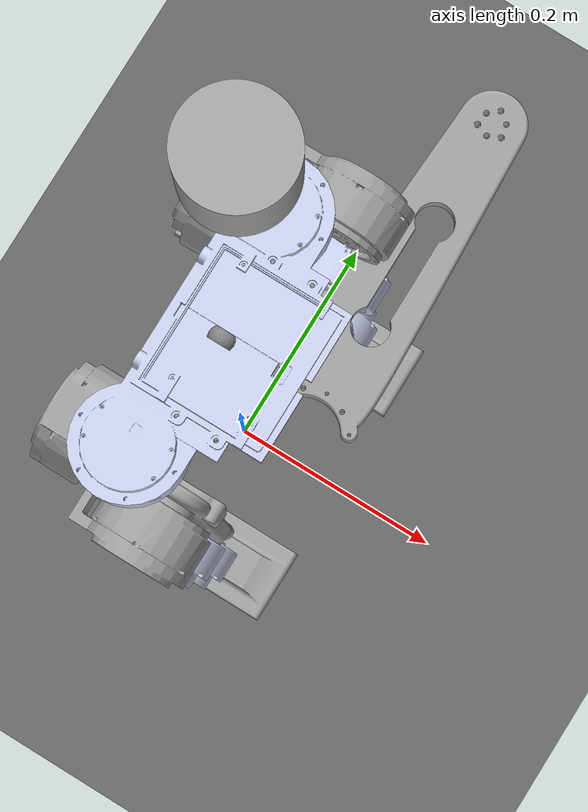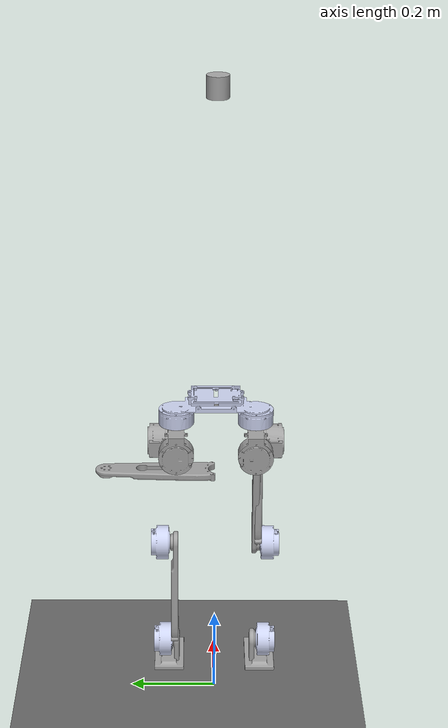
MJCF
<mujoco model="onshape">
  <option iterations="20" timestep="0.001" solver="CG" gravity="0 0 -9.81" />

  <compiler angle="radian" meshdir="../meshes" eulerseq="zyx" autolimits="true" />

  <default>
    <joint limited="true" damping="0.1" armature="0.01" frictionloss="0.01" />
    <geom condim="4" contype="1" conaffinity="15" friction="0.9 0.2 0.2" solref="0.001 2" />
    <motor ctrllimited="true" />
    <equality solref="0.001 2" />
    <default class="visualgeom">
      <geom material="visualgeom" condim="1" contype="0" conaffinity="0" />
    </default>
  </default>

  <asset>
    <mesh name="torso" file="torso.stl" />
    <mesh name="left_hip_yaw_assembled_link" file="left_hip_yaw_assembled_link.stl" />
    <mesh name="left_hip_roll_assembled_link" file="left_hip_roll_assembled_link.stl" />
    <mesh name="left_thigh_link" file="left_thigh_link.stl" />
    <mesh name="left_knee_motor" file="left_knee_motor.stl" />
    <mesh name="left_shin_motor_down_link" file="left_shin_motor_down_link.stl" />
    <mesh name="left_ankle_motor" file="left_ankle_motor.stl" />
    <mesh name="left_foot_10_dof_link" file="left_foot_10_dof_link.stl" />
    <mesh name="right_hip_yaw_assembled_link" file="right_hip_yaw_assembled_link.stl" />
    <mesh name="right_hip_roll_assembled_link" file="right_hip_roll_assembled_link.stl" />
    <mesh name="right_thigh_link" file="right_thigh_link.stl" />
    <mesh name="right_knee_motor" file="right_knee_motor.stl" />
    <mesh name="right_shin_motor_down_link" file="right_shin_motor_down_link.stl" />
    <mesh name="right_ankle_motor" file="right_ankle_motor.stl" />
    <mesh name="right_foot_10_dof_link" file="right_foot_10_dof_link.stl" />
    <mesh name="additional_weight" file="additional_weight.stl" />
    <texture name="texplane" type="2d" builtin="checker" rgb1=".0 .0 .0" rgb2=".8 .8 .8" width="100" height="100" />
    <material name="matplane" reflectance="0." texture="texplane" texrepeat="1 1" texuniform="true" />
    <material name="visualgeom" rgba="0.5 0.9 0.2 1" />
  </asset>

  <worldbody>
    <light directional="true" diffuse="0.4 0.4 0.4" specular="0.1 0.1 0.1" pos="0 0 5.0" dir="0 0 -1" castshadow="false" />
    <light directional="true" diffuse="0.6 0.6 0.6" specular="0.2 0.2 0.2" pos="0 0 4" dir="0 0 -1" />
    <geom name="ground" type="plane" pos="0 0 0" size="100 100 0.001" quat="1 0 0 0" material="matplane" condim="3" conaffinity="15" />
    <camera name="fixed" pos="0 -3.0 1.2492035005171611" xyaxes="1 0 0 0 0 1" />
    <camera name="track" mode="trackcom" pos="0 -3.0 1.2492035005171611" xyaxes="1 0 0 0 0 1" />
    <body name="root" pos="0 0 0.749203500517161" quat="1 0 0 0">
      <freejoint name="root" />
      <site name="imu" size="0.01" pos="0 0 0" />
      <inertial
        pos="-0.0100212716 0.0000135578 -0.0142364821"
        mass="1.2245306367"
        quat="-0.10803505 -0.6986577 0.69892007 -0.10824318"
        diaginertia="0.0009952922 0.0087632716 0.0092824904"
      />
      <geom pos="-8.85257e-08 5.76608e-05 1.80716e-09" quat="1 3.44441e-11 -2.50723e-08 3.58869e-11" type="mesh" rgba="0.792157 0.819608 0.933333 1" mesh="torso" contype="1" conaffinity="0" density="0" group="1" class="visualgeom" />
      <geom type="mesh" rgba="0.792157 0.819608 0.933333 1" mesh="torso" pos="-8.85257e-08 5.76608e-05 1.80716e-09" quat="1 3.44441e-11 -2.50723e-08 3.58869e-11" />
      <geom pos="0.031893 6.42416e-05 0.753" quat="1 3.4444e-11 -2.50723e-08 3.58869e-11" type="mesh" rgba="0.647059 0.647059 0.647059 1" mesh="additional_weight" contype="1" conaffinity="0" density="0" group="1" class="visualgeom" />
      <geom type="mesh" rgba="0.647059 0.647059 0.647059 1" mesh="additional_weight" pos="0.031893 6.42416e-05 0.753" quat="1 3.4444e-11 -2.50723e-08 3.58869e-11" />
      <body name="left_hip_yaw_assembled_link" pos="-0.0154483 0.0900588 -0.041" quat="0 0.999999 0.0013918 2.50724e-08">
        <inertial pos="-0.0381991 -0.000556031 0.0498722" quat="0.992614 0.00930388 -0.120205 -0.0135103" mass="0.230401" diaginertia="0.000234409 0.000193369 0.000125349" />
        <joint name="left_hip_yaw_joint" pos="0 0 0" axis="0 0 1" range="-0.349066 0.349066" />
        <geom quat="0 -1 0 0" type="mesh" rgba="0.627451 0.627451 0.627451 1" mesh="left_hip_yaw_assembled_link" contype="1" conaffinity="0" density="0" group="1" class="visualgeom" />
        <geom type="mesh" rgba="0.627451 0.627451 0.627451 1" mesh="left_hip_yaw_assembled_link" quat="0 -1 0 0" />
        <body name="left_hip_roll_assembled_link" pos="-0.0207145 1.21952e-06 0.0563028" quat="0.499995 0.499995 0.500005 0.500005">
          <inertial pos="-0.0381991 -0.000556031 0.0498722" quat="0.992614 0.00930388 -0.120205 -0.0135103" mass="0.230401" diaginertia="0.000234409 0.000193369 0.000125349" />
          <joint name="left_hip_roll_joint" pos="0 0 0" axis="0 0 1" range="-0.349066 0.349066" />
          <geom quat="0 -1 0 0" type="mesh" rgba="0.627451 0.627451 0.627451 1" mesh="left_hip_roll_assembled_link" contype="1" conaffinity="0" density="0" group="1" class="visualgeom" />
          <geom type="mesh" rgba="0.627451 0.627451 0.627451 1" mesh="left_hip_roll_assembled_link" quat="0 -1 0 0" />
          <body name="left_thigh_link" pos="-0.0207145 1.21952e-06 0.0563028" quat="0.707107 6.36905e-06 -0.707107 6.36905e-06">
            <inertial pos="-0.000360722 0.216483 0.00523348" quat="0.469025 0.522193 -0.532109 0.473487" mass="0.678365" diaginertia="0.00518913 0.0049981 0.000341861" />
            <joint name="left_hip_pitch_joint" pos="0 0 0" axis="0 0 1" range="-1.5708 0.349066" />
            <geom pos="0 0 0" quat="1 0 0 0" type="mesh" rgba="0.627451 0.627451 0.627451 1" mesh="left_thigh_link" contype="1" conaffinity="0" density="0" group="1" class="visualgeom" />
            <geom type="mesh" rgba="0.627451 0.627451 0.627451 1" mesh="left_thigh_link" pos="0 0 0" quat="1 0 0 0" />
            <geom pos="8.53217e-05 0.266945 -0.004547" quat="1 0 0 0" type="mesh" rgba="0.792157 0.819608 0.933333 1" mesh="left_knee_motor" contype="1" conaffinity="0" density="0" group="1" class="visualgeom" />
            <geom type="mesh" rgba="0.792157 0.819608 0.933333 1" mesh="left_knee_motor" pos="8.53217e-05 0.266945 -0.004547" quat="1 0 0 0" />
            <body name="left_shin_motor_down_link" pos="8.53217e-05 0.266945 -0.005547" quat="0 -1 -2.50346e-08 0">
              <inertial pos="-0.000360722 -0.216483 -0.00523348" quat="0.473487 0.532109 -0.522193 0.469025" mass="0.678365" diaginertia="0.00518913 0.0049981 0.000341861" />
              <joint name="left_knee_joint" pos="0 0 0" axis="0 0 1" range="-0.698132 0" />
              <geom pos="0 0 0" quat="0 1 0 0" type="mesh" rgba="0.627451 0.627451 0.627451 1" mesh="left_shin_motor_down_link" contype="1" conaffinity="0" density="0" group="1" class="visualgeom" />
              <geom type="mesh" rgba="0.627451 0.627451 0.627451 1" mesh="left_shin_motor_down_link" pos="0 0 0" quat="0 1 0 0" />
              <geom pos="8.53217e-05 -0.266945 0.004547" quat="0 1 0 0" type="mesh" rgba="0.792157 0.819608 0.933333 1" mesh="left_ankle_motor" contype="1" conaffinity="0" density="0" group="1" class="visualgeom" />
              <geom type="mesh" rgba="0.792157 0.819608 0.933333 1" mesh="left_ankle_motor" pos="8.53217e-05 -0.266945 0.004547" quat="0 1 0 0" />
              <body name="left_foot_10_dof_link" pos="8.53217e-05 -0.266945 0.005547" quat="0 1 0 0">
                <inertial pos="0.0122141 0.041306 0.00498826" quat="-0.30481 0.653084 -0.167476 0.672699" mass="0.177898" diaginertia="0.000293598 0.000250371 0.000124016" />
                <joint name="left_ankle_joint" pos="0 0 0" axis="0 0 1" range="-0.698132 0.698132" />
                <geom pos="0 0 0.01" quat="1 0 0 0" type="mesh" rgba="0.627451 0.627451 0.627451 1" mesh="left_foot_10_dof_link" contype="1" conaffinity="0" density="0" group="1" class="visualgeom" />
                <geom type="mesh" rgba="0.627451 0.627451 0.627451 1" mesh="left_foot_10_dof_link" pos="0 0 0.01" quat="1 0 0 0" />
              </body>
            </body>
          </body>
        </body>
      </body>
      <body name="right_hip_yaw_assembled_link" pos="-0.0154461 -0.0899447 -0.041" quat="2.50723e-08 0 1 3.44441e-11">
        <inertial pos="0.0381995 -0.000557154 0.0499698" quat="0.992644 0.0105754 0.119918 0.0128339" mass="0.230395" diaginertia="0.000234665 0.000193652 0.000125354" />
        <joint name="right_hip_yaw_joint" pos="0 0 0" axis="0 0 1" range="-0.349066 0.349066" />
        <geom quat="0 -1 0 0" type="mesh" rgba="0.627451 0.627451 0.627451 1" mesh="right_hip_yaw_assembled_link" contype="1" conaffinity="0" density="0" group="1" class="visualgeom" />
        <geom type="mesh" rgba="0.627451 0.627451 0.627451 1" mesh="right_hip_yaw_assembled_link" quat="0 -1 0 0" />
        <body name="right_hip_roll_assembled_link" pos="0.0207145 -1.21925e-06 0.0562972" quat="0.500005 0.500005 -0.499995 -0.499995">
          <inertial pos="0.0381995 -0.000557154 0.0499698" quat="0.992644 0.0105754 0.119918 0.0128339" mass="0.230395" diaginertia="0.000234665 0.000193652 0.000125354" />
          <joint name="right_hip_roll_joint" pos="0 0 0" axis="0 0 1" range="-0.349066 0.349066" />
          <geom quat="0 -1 0 0" type="mesh" rgba="0.627451 0.627451 0.627451 1" mesh="right_hip_roll_assembled_link" contype="1" conaffinity="0" density="0" group="1" class="visualgeom" />
          <geom type="mesh" rgba="0.627451 0.627451 0.627451 1" mesh="right_hip_roll_assembled_link" quat="0 -1 0 0" />
          <body name="right_thigh_link" pos="0.0207145 -1.21925e-06 0.0562972" quat="6.36906e-06 -0.707107 -6.36906e-06 -0.707107">
            <inertial pos="0.000402509 -0.216483 0.0052335" quat="0.532059 0.473532 -0.468979 0.522244" mass="0.678364" diaginertia="0.00518909 0.00499805 0.000341861" />
            <joint name="right_hip_pitch_joint" pos="0 0 0" axis="0 0 1" range="-0.349066 1.5708" />
            <geom type="mesh" rgba="0.627451 0.627451 0.627451 1" mesh="right_thigh_link" contype="1" conaffinity="0" density="0" group="1" class="visualgeom" />
            <geom type="mesh" rgba="0.627451 0.627451 0.627451 1" mesh="right_thigh_link" />
            <geom pos="-3.37919e-05 -0.266945 -0.004547" quat="0 0 0 1" type="mesh" rgba="0.792157 0.819608 0.933333 1" mesh="right_knee_motor" contype="1" conaffinity="0" density="0" group="1" class="visualgeom" />
            <geom type="mesh" rgba="0.792157 0.819608 0.933333 1" mesh="right_knee_motor" pos="-3.37919e-05 -0.266945 -0.004547" quat="0 0 0 1" />
            <body name="right_shin_motor_down_link" pos="-3.37919e-05 -0.266945 -0.005547" quat="0 1 -5.01449e-08 0">
              <inertial pos="0.000398268 0.216483 -0.0052335" quat="0.522225 0.468978 -0.473534 0.532077" mass="0.678364" diaginertia="0.00518909 0.00499806 0.000341862" />
              <joint name="right_knee_joint" pos="0 0 0" axis="0 0 1" range="0 0.698132" />
              <geom pos="0 0 0" quat="0 1 0 0" type="mesh" rgba="0.627451 0.627451 0.627451 1" mesh="right_shin_motor_down_link" contype="1" conaffinity="0" density="0" group="1" class="visualgeom" />
              <geom type="mesh" rgba="0.627451 0.627451 0.627451 1" mesh="right_shin_motor_down_link" pos="0 0 0" quat="0 1 0 0" />
              <geom pos="-4.03551e-05 0.266945 0.004547" quat="0 0 1 0" type="mesh" rgba="0.792157 0.819608 0.933333 1" mesh="right_ankle_motor" contype="1" conaffinity="0" density="0" group="1" class="visualgeom" />
              <geom type="mesh" rgba="0.792157 0.819608 0.933333 1" mesh="right_ankle_motor" pos="-4.03551e-05 0.266945 0.004547" quat="0 0 1 0" />
              <body name="right_foot_10_dof_link" pos="-4.03551e-05 0.266945 0.005547" quat="0 -1 0 0">
                <inertial pos="0.012214 -0.041306 0.00498823" quat="0.304811 0.653084 0.167476 0.672698" mass="0.177898" diaginertia="0.000293596 0.000250368 0.000124016" />
                <joint name="right_ankle_joint" pos="0 0 0" axis="0 0 1" range="-0.698132 0.698132" />
                <geom pos="0 0 0.01" quat="0 1 0 0" type="mesh" rgba="0.627451 0.627451 0.627451 1" mesh="right_foot_10_dof_link" contype="1" conaffinity="0" density="0" group="1" class="visualgeom" />
                <geom type="mesh" rgba="0.627451 0.627451 0.627451 1" mesh="right_foot_10_dof_link" pos="0 0 0.01" quat="0 1 0 0" />
              </body>
            </body>
          </body>
        </body>
      </body>
    </body>
  </worldbody>

  <actuator>
    <motor name="left_hip_yaw_joint" joint="left_hip_yaw_joint" ctrllimited="true" ctrlrange="-8 8" gear="1" />
    <motor name="left_hip_roll_joint" joint="left_hip_roll_joint" ctrllimited="true" ctrlrange="-8 8" gear="1" />
    <motor name="left_hip_pitch_joint" joint="left_hip_pitch_joint" ctrllimited="true" ctrlrange="-8 8" gear="1" />
    <motor name="left_knee_joint" joint="left_knee_joint" ctrllimited="true" ctrlrange="-8 8" gear="1" />
    <motor name="left_ankle_joint" joint="left_ankle_joint" ctrllimited="true" ctrlrange="-8 8" gear="1" />
    <motor name="right_hip_yaw_joint" joint="right_hip_yaw_joint" ctrllimited="true" ctrlrange="-8 8" gear="1" />
    <motor name="right_hip_roll_joint" joint="right_hip_roll_joint" ctrllimited="true" ctrlrange="-8 8" gear="1" />
    <motor name="right_hip_pitch_joint" joint="right_hip_pitch_joint" ctrllimited="true" ctrlrange="-8 8" gear="1" />
    <motor name="right_knee_joint" joint="right_knee_joint" ctrllimited="true" ctrlrange="-8 8" gear="1" />
    <motor name="right_ankle_joint" joint="right_ankle_joint" ctrllimited="true" ctrlrange="-8 8" gear="1" />
  </actuator>

  <sensor>
    <actuatorpos name="left_hip_yaw_joint_p" actuator="left_hip_yaw_joint" />
    <actuatorvel name="left_hip_yaw_joint_v" actuator="left_hip_yaw_joint" />
    <actuatorfrc name="left_hip_yaw_joint_f" actuator="left_hip_yaw_joint" noise="0.001" />
    <actuatorpos name="left_hip_roll_joint_p" actuator="left_hip_roll_joint" />
    <actuatorvel name="left_hip_roll_joint_v" actuator="left_hip_roll_joint" />
    <actuatorfrc name="left_hip_roll_joint_f" actuator="left_hip_roll_joint" noise="0.001" />
    <actuatorpos name="left_hip_pitch_joint_p" actuator="left_hip_pitch_joint" />
    <actuatorvel name="left_hip_pitch_joint_v" actuator="left_hip_pitch_joint" />
    <actuatorfrc name="left_hip_pitch_joint_f" actuator="left_hip_pitch_joint" noise="0.001" />
    <actuatorpos name="left_knee_joint_p" actuator="left_knee_joint" />
    <actuatorvel name="left_knee_joint_v" actuator="left_knee_joint" />
    <actuatorfrc name="left_knee_joint_f" actuator="left_knee_joint" noise="0.001" />
    <actuatorpos name="left_ankle_joint_p" actuator="left_ankle_joint" />
    <actuatorvel name="left_ankle_joint_v" actuator="left_ankle_joint" />
    <actuatorfrc name="left_ankle_joint_f" actuator="left_ankle_joint" noise="0.001" />
    <actuatorpos name="right_hip_yaw_joint_p" actuator="right_hip_yaw_joint" />
    <actuatorvel name="right_hip_yaw_joint_v" actuator="right_hip_yaw_joint" />
    <actuatorfrc name="right_hip_yaw_joint_f" actuator="right_hip_yaw_joint" noise="0.001" />
    <actuatorpos name="right_hip_roll_joint_p" actuator="right_hip_roll_joint" />
    <actuatorvel name="right_hip_roll_joint_v" actuator="right_hip_roll_joint" />
    <actuatorfrc name="right_hip_roll_joint_f" actuator="right_hip_roll_joint" noise="0.001" />
    <actuatorpos name="right_hip_pitch_joint_p" actuator="right_hip_pitch_joint" />
    <actuatorvel name="right_hip_pitch_joint_v" actuator="right_hip_pitch_joint" />
    <actuatorfrc name="right_hip_pitch_joint_f" actuator="right_hip_pitch_joint" noise="0.001" />
    <actuatorpos name="right_knee_joint_p" actuator="right_knee_joint" />
    <actuatorvel name="right_knee_joint_v" actuator="right_knee_joint" />
    <actuatorfrc name="right_knee_joint_f" actuator="right_knee_joint" noise="0.001" />
    <actuatorpos name="right_ankle_joint_p" actuator="right_ankle_joint" />
    <actuatorvel name="right_ankle_joint_v" actuator="right_ankle_joint" />
    <actuatorfrc name="right_ankle_joint_f" actuator="right_ankle_joint" noise="0.001" />

    <framequat name="orientation" objtype="site" noise="0.001" objname="imu" />
    <framepos     name='position' objtype='site' noise='0.001' objname='imu'/>
    <gyro          name='angular-velocity'    site='imu' noise='0.005' cutoff='34.9'/>
    <velocimeter   name='linear-velocity'     site='imu' noise='0.001' cutoff='30'/>
    <accelerometer name='linear-acceleration' site='imu' noise='0.005' cutoff='157'/>
    <magnetometer  name='magnetometer'        site='imu'/>

  </sensor>
</mujoco>
